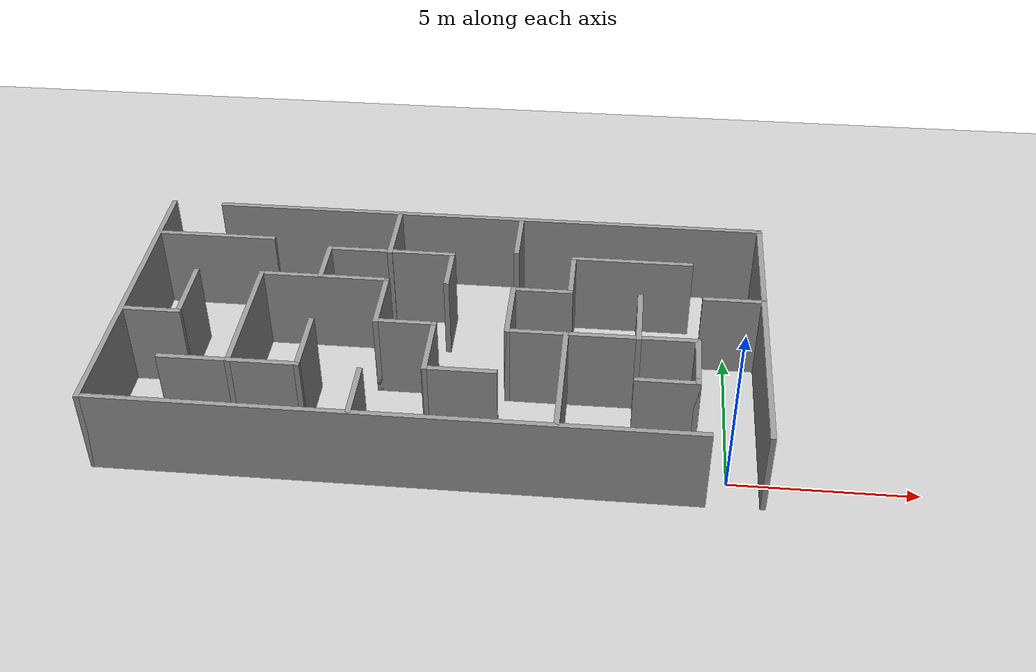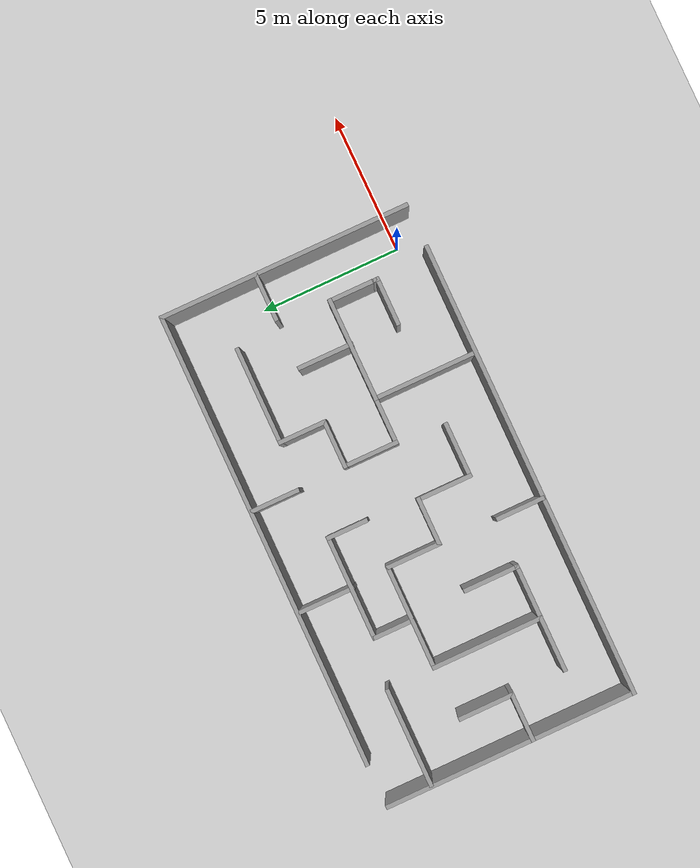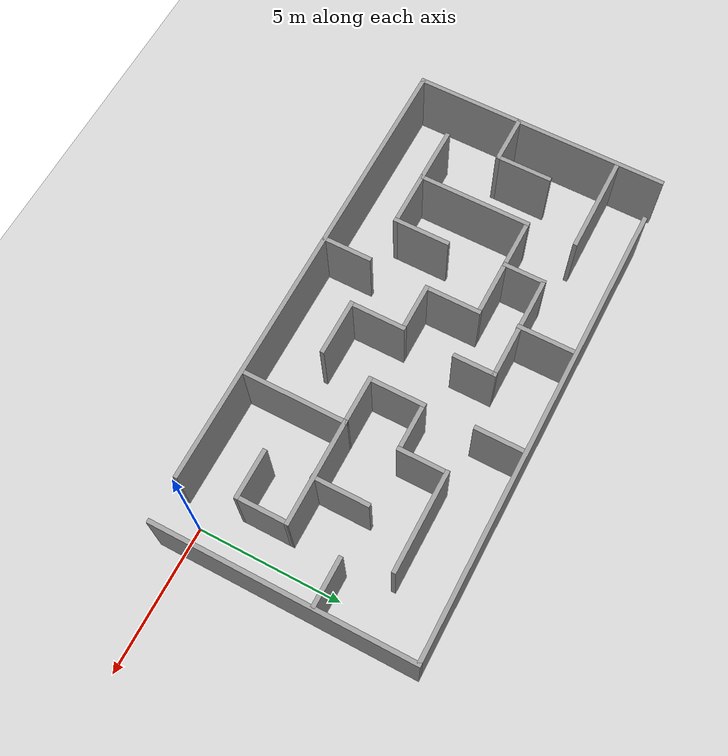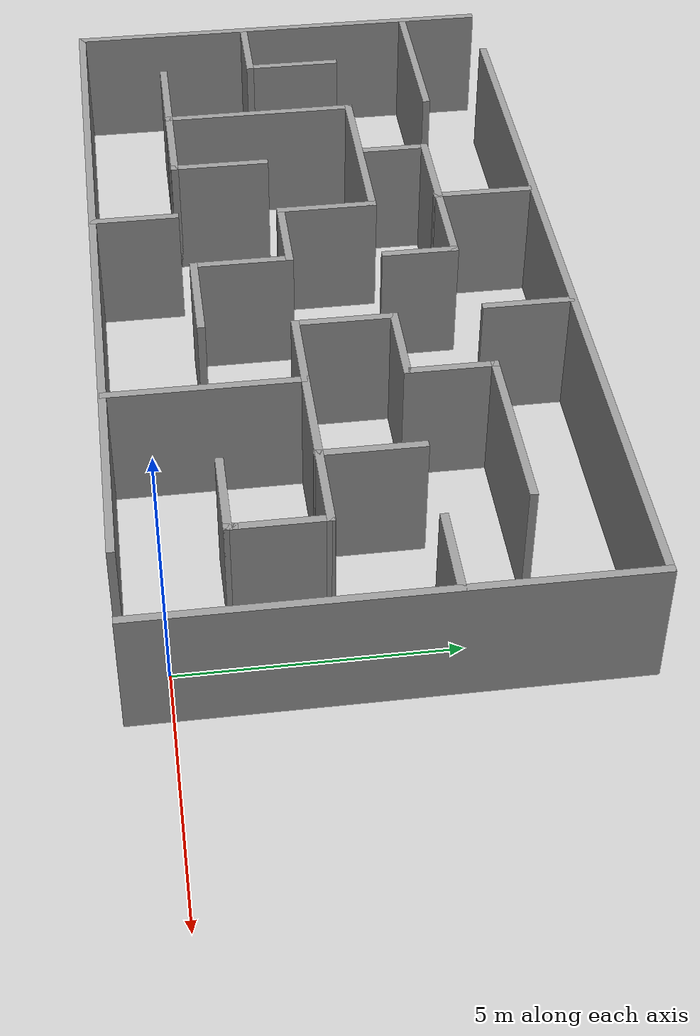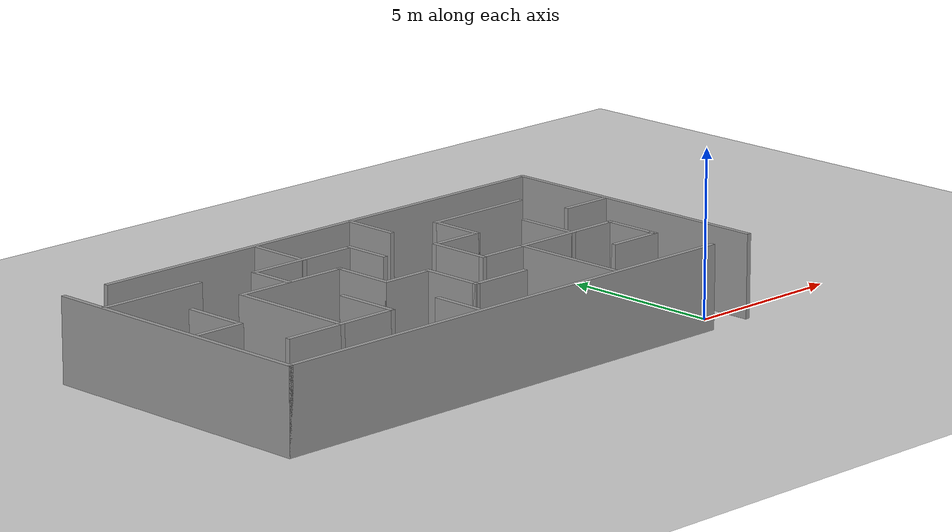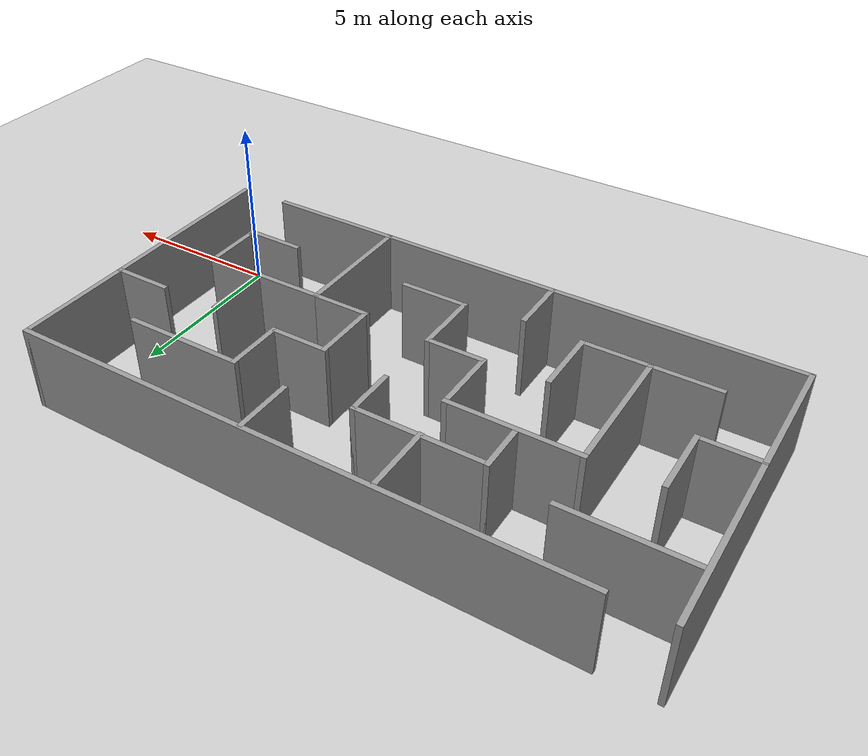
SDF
<sdf version="1.6">
 <world name="default">
  <light name="sun" type="directional">
   <pose>0 0 10 0 -0 0</pose>
   <diffuse>0.8 0.8 0.8 1</diffuse>
   <specular>0.2 0.2 0.2 1</specular>
   <attenuation>
    <range>1000</range>
    <constant>0.9</constant>
    <linear>0.01</linear>
    <quadratic>0.001</quadratic>
   </attenuation>
   <direction>-0.5 0.1 -0.9</direction>
  </light>
  <model name="ground_plane">
   <static>1</static>
   <link name="link">
    <collision name="collision">
     <geometry><plane><normal>0 0 1</normal><size>100 100</size></plane></geometry>
     <surface>
      <contact><collide_bitmask>65535</collide_bitmask></contact>
      <friction><ode><mu>100</mu><mu2>50</mu2></ode></friction>
     </surface>
    </collision>
    <visual name="visual">
     <cast_shadows>0</cast_shadows>
     <geometry><plane><normal>0 0 1</normal><size>100 100</size></plane></geometry>
     <material>
      <script><uri>file://media/materials/scripts/gazebo.material</uri><name>Gazebo/Grey</name></script>
     </material>
    </visual>
   </link>
  </model>
  <gravity>0 0 -9.8</gravity>
  <magnetic_field>6e-06 2.3e-05 -4.2e-05</magnetic_field>
  <atmosphere type="adiabatic"/>
  <physics name="default_physics" default="0" type="ode">
   <max_step_size>0.001</max_step_size>
   <real_time_factor>1</real_time_factor>
   <real_time_update_rate>1000</real_time_update_rate>
  </physics>
  <scene><ambient>0.4 0.4 0.4 1</ambient><background>0.7 0.7 0.7 1</background><shadows>1</shadows></scene>
  <spherical_coordinates>
   <surface_model>EARTH_WGS84</surface_model>
   <latitude_deg>0</latitude_deg>
   <longitude_deg>0</longitude_deg>
   <elevation>0</elevation>
   <heading_deg>0</heading_deg>
  </spherical_coordinates>
  <model name="maze">
   <pose>-7.91635 3.66306 0 0 -0 3.14</pose>
   <link name="Wall_0">
    <collision name="Wall_0_Collision">
     <geometry><box><size>16.25 0.15 2.5</size></box></geometry>
     <pose>0 0 1.25 0 -0 0</pose>
    </collision>
    <visual name="Wall_0_Visual">
     <pose>0 0 1.25 0 -0 0</pose>
     <geometry><box><size>16.25 0.15 2.5</size></box></geometry>
     <material>
      <script><uri>file://media/materials/scripts/gazebo.material</uri><name>Gazebo/Grey</name></script>
      <ambient>1 1 1 1</ambient>
     </material>
     <meta><layer>0</layer></meta>
    </visual>
    <pose>0.774875 4.44813 0 0 -0 0</pose>
   </link>
   <link name="Wall_1">
    <collision name="Wall_1_Collision">
     <geometry><box><size>9 0.15 2.5</size></box></geometry>
     <pose>0 0 1.25 0 -0 0</pose>
    </collision>
    <visual name="Wall_1_Visual">
     <pose>0 0 1.25 0 -0 0</pose>
     <geometry><box><size>9 0.15 2.5</size></box></geometry>
     <material>
      <script><uri>file://media/materials/scripts/gazebo.material</uri><name>Gazebo/Grey</name></script>
      <ambient>1 1 1 1</ambient>
     </material>
     <meta><layer>0</layer></meta>
    </visual>
    <pose>8.82488 0.02313 0 0 -0 -1.5708</pose>
   </link>
   <link name="Wall_13">
    <collision name="Wall_13_Collision">
     <geometry><box><size>0.25 0.15 2.5</size></box></geometry>
     <pose>0 0 1.25 0 -0 0</pose>
    </collision>
    <visual name="Wall_13_Visual">
     <pose>0 0 1.25 0 -0 0</pose>
     <geometry><box><size>0.25 0.15 2.5</size></box></geometry>
     <material>
      <script><uri>file://media/materials/scripts/gazebo.material</uri><name>Gazebo/Grey</name></script>
      <ambient>1 1 1 1</ambient>
     </material>
     <meta><layer>0</layer></meta>
    </visual>
    <pose>-7.00235 2.475 0 0 -0 1.5708</pose>
   </link>
   <link name="Wall_14">
    <collision name="Wall_14_Collision">
     <geometry><box><size>1.75 0.15 2.5</size></box></geometry>
     <pose>0 0 1.25 0 -0 0</pose>
    </collision>
    <visual name="Wall_14_Visual">
     <pose>0 0 1.25 0 -0 0</pose>
     <geometry><box><size>1.75 0.15 2.5</size></box></geometry>
     <material>
      <script><uri>file://media/materials/scripts/gazebo.material</uri><name>Gazebo/Grey</name></script>
      <ambient>1 1 1 1</ambient>
     </material>
     <meta><layer>0</layer></meta>
    </visual>
    <pose>-6.20235 2.525 0 0 -0 0</pose>
   </link>
   <link name="Wall_17">
    <collision name="Wall_17_Collision">
     <geometry><box><size>1.75 0.15 2.5</size></box></geometry>
     <pose>0 0 1.25 0 -0 0</pose>
    </collision>
    <visual name="Wall_17_Visual">
     <pose>0 0 1.25 0 -0 0</pose>
     <geometry><box><size>1.75 0.15 2.5</size></box></geometry>
     <material>
      <script><uri>file://media/materials/scripts/gazebo.material</uri><name>Gazebo/Grey</name></script>
      <ambient>1 1 1 1</ambient>
     </material>
     <meta><layer>0</layer></meta>
    </visual>
    <pose>-2.65857 0.825 0 0 -0 0</pose>
   </link>
   <link name="Wall_18">
    <collision name="Wall_18_Collision">
     <geometry><box><size>2 0.15 2.5</size></box></geometry>
     <pose>0 0 1.25 0 -0 0</pose>
    </collision>
    <visual name="Wall_18_Visual">
     <pose>0 0 1.25 0 -0 0</pose>
     <geometry><box><size>2 0.15 2.5</size></box></geometry>
     <material>
      <script><uri>file://media/materials/scripts/gazebo.material</uri><name>Gazebo/Grey</name></script>
      <ambient>1 1 1 1</ambient>
     </material>
     <meta><layer>0</layer></meta>
    </visual>
    <pose>-1.85858 -0.1 0 0 -0 -1.5708</pose>
   </link>
   <link name="Wall_19">
    <collision name="Wall_19_Collision">
     <geometry><box><size>1.75 0.15 2.5</size></box></geometry>
     <pose>0 0 1.25 0 -0 0</pose>
    </collision>
    <visual name="Wall_19_Visual">
     <pose>0 0 1.25 0 -0 0</pose>
     <geometry><box><size>1.75 0.15 2.5</size></box></geometry>
     <material>
      <script><uri>file://media/materials/scripts/gazebo.material</uri><name>Gazebo/Grey</name></script>
      <ambient>1 1 1 1</ambient>
     </material>
     <meta><layer>0</layer></meta>
    </visual>
    <pose>-2.65857 -1.025 0 0 -0 3.14159</pose>
   </link>
   <link name="Wall_20">
    <collision name="Wall_20_Collision">
     <geometry><box><size>1.75 0.15 2.5</size></box></geometry>
     <pose>0 0 1.25 0 -0 0</pose>
    </collision>
    <visual name="Wall_20_Visual">
     <pose>0 0 1.25 0 -0 0</pose>
     <geometry><box><size>1.75 0.15 2.5</size></box></geometry>
     <material>
      <script><uri>file://media/materials/scripts/gazebo.material</uri><name>Gazebo/Grey</name></script>
      <ambient>1 1 1 1</ambient>
     </material>
     <meta><layer>0</layer></meta>
    </visual>
    <pose>-3.45858 -1.825 0 0 -0 -1.5708</pose>
   </link>
   <link name="Wall_21">
    <collision name="Wall_21_Collision">
     <geometry><box><size>3.5 0.15 2.5</size></box></geometry>
     <pose>0 0 1.25 0 -0 0</pose>
    </collision>
    <visual name="Wall_21_Visual">
     <pose>0 0 1.25 0 -0 0</pose>
     <geometry><box><size>3.5 0.15 2.5</size></box></geometry>
     <material>
      <script><uri>file://media/materials/scripts/gazebo.material</uri><name>Gazebo/Grey</name></script>
      <ambient>1 1 1 1</ambient>
     </material>
     <meta><layer>0</layer></meta>
    </visual>
    <pose>-5.13357 -2.625 0 0 -0 3.14159</pose>
   </link>
   <link name="Wall_23">
    <collision name="Wall_23_Collision">
     <geometry><box><size>2 0.15 2.5</size></box></geometry>
     <pose>0 0 1.25 0 -0 0</pose>
    </collision>
    <visual name="Wall_23_Visual">
     <pose>0 0 1.25 0 -0 0</pose>
     <geometry><box><size>2 0.15 2.5</size></box></geometry>
     <material>
      <script><uri>file://media/materials/scripts/gazebo.material</uri><name>Gazebo/Grey</name></script>
      <ambient>1 1 1 1</ambient>
     </material>
     <meta><layer>0</layer></meta>
    </visual>
    <pose>-5.41688 -0.089204 0 0 -0 -1.5708</pose>
   </link>
   <link name="Wall_25">
    <collision name="Wall_25_Collision">
     <geometry><box><size>1.75 0.15 2.5</size></box></geometry>
     <pose>0 0 1.25 0 -0 0</pose>
    </collision>
    <visual name="Wall_25_Visual">
     <pose>0 0 1.25 0 -0 0</pose>
     <geometry><box><size>1.75 0.15 2.5</size></box></geometry>
     <material>
      <script><uri>file://media/materials/scripts/gazebo.material</uri><name>Gazebo/Grey</name></script>
      <ambient>1 1 1 1</ambient>
     </material>
     <meta><layer>0</layer></meta>
    </visual>
    <pose>-8.00995 -1.05313 0 0 -0 0</pose>
   </link>
   <link name="Wall_27">
    <collision name="Wall_27_Collision">
     <geometry><box><size>1.75 0.15 2.5</size></box></geometry>
     <pose>0 0 1.25 0 -0 0</pose>
    </collision>
    <visual name="Wall_27_Visual">
     <pose>0 0 1.25 0 -0 0</pose>
     <geometry><box><size>1.75 0.15 2.5</size></box></geometry>
     <material>
      <script><uri>file://media/materials/scripts/gazebo.material</uri><name>Gazebo/Grey</name></script>
      <ambient>1 1 1 1</ambient>
     </material>
     <meta><layer>0</layer></meta>
    </visual>
    <pose>-1.78801 -3.58208 0 0 -0 1.5708</pose>
   </link>
   <link name="Wall_29">
    <collision name="Wall_29_Collision">
     <geometry><box><size>1.75 0.15 2.5</size></box></geometry>
     <pose>0 0 1.25 0 -0 0</pose>
    </collision>
    <visual name="Wall_29_Visual">
     <pose>0 0 1.25 0 -0 0</pose>
     <geometry><box><size>1.75 0.15 2.5</size></box></geometry>
     <material>
      <script><uri>file://media/materials/scripts/gazebo.material</uri><name>Gazebo/Grey</name></script>
      <ambient>1 1 1 1</ambient>
     </material>
     <meta><layer>0</layer></meta>
    </visual>
    <pose>1.81187 3.61722 0 0 -0 -1.5708</pose>
   </link>
   <link name="Wall_3">
    <collision name="Wall_3_Collision">
     <geometry><box><size>9 0.15 2.5</size></box></geometry>
     <pose>0 0 1.25 0 -0 0</pose>
    </collision>
    <visual name="Wall_3_Visual">
     <pose>0 0 1.25 0 -0 0</pose>
     <geometry><box><size>9 0.15 2.5</size></box></geometry>
     <material>
      <script><uri>file://media/materials/scripts/gazebo.material</uri><name>Gazebo/Grey</name></script>
      <ambient>1 1 1 1</ambient>
     </material>
     <meta><layer>0</layer></meta>
    </visual>
    <pose>-8.82488 -0.023131 0 0 -0 -1.5708</pose>
   </link>
   <link name="Wall_32">
    <collision name="Wall_32_Collision">
     <geometry><box><size>2 0.15 2.5</size></box></geometry>
     <pose>0 0 1.25 0 -0 0</pose>
    </collision>
    <visual name="Wall_32_Visual">
     <pose>0 0 1.25 0 -0 0</pose>
     <geometry><box><size>2 0.15 2.5</size></box></geometry>
     <material>
      <script><uri>file://media/materials/scripts/gazebo.material</uri><name>Gazebo/Grey</name></script>
      <ambient>1 1 1 1</ambient>
     </material>
     <meta><layer>0</layer></meta>
    </visual>
    <pose>-0.778628 2.56327 0 0 -0 0</pose>
   </link>
   <link name="Wall_33">
    <collision name="Wall_33_Collision">
     <geometry><box><size>2 0.15 2.5</size></box></geometry>
     <pose>0 0 1.25 0 -0 0</pose>
    </collision>
    <visual name="Wall_33_Visual">
     <pose>0 0 1.25 0 -0 0</pose>
     <geometry><box><size>2 0.15 2.5</size></box></geometry>
     <material>
      <script><uri>file://media/materials/scripts/gazebo.material</uri><name>Gazebo/Grey</name></script>
      <ambient>1 1 1 1</ambient>
     </material>
     <meta><layer>0</layer></meta>
    </visual>
    <pose>0.146372 1.63827 0 0 -0 -1.5708</pose>
   </link>
   <link name="Wall_34">
    <collision name="Wall_34_Collision">
     <geometry><box><size>1.75 0.15 2.5</size></box></geometry>
     <pose>0 0 1.25 0 -0 0</pose>
    </collision>
    <visual name="Wall_34_Visual">
     <pose>0 0 1.25 0 -0 0</pose>
     <geometry><box><size>1.75 0.15 2.5</size></box></geometry>
     <material>
      <script><uri>file://media/materials/scripts/gazebo.material</uri><name>Gazebo/Grey</name></script>
      <ambient>1 1 1 1</ambient>
     </material>
     <meta><layer>0</layer></meta>
    </visual>
    <pose>0.946372 0.713275 0 0 -0 0</pose>
   </link>
   <link name="Wall_35">
    <collision name="Wall_35_Collision">
     <geometry><box><size>2 0.15 2.5</size></box></geometry>
     <pose>0 0 1.25 0 -0 0</pose>
    </collision>
    <visual name="Wall_35_Visual">
     <pose>0 0 1.25 0 -0 0</pose>
     <geometry><box><size>2 0.15 2.5</size></box></geometry>
     <material>
      <script><uri>file://media/materials/scripts/gazebo.material</uri><name>Gazebo/Grey</name></script>
      <ambient>1 1 1 1</ambient>
     </material>
     <meta><layer>0</layer></meta>
    </visual>
    <pose>1.74637 -0.211725 0 0 -0 -1.5708</pose>
   </link>
   <link name="Wall_36">
    <collision name="Wall_36_Collision">
     <geometry><box><size>3.75 0.15 2.5</size></box></geometry>
     <pose>0 0 1.25 0 -0 0</pose>
    </collision>
    <visual name="Wall_36_Visual">
     <pose>0 0 1.25 0 -0 0</pose>
     <geometry><box><size>3.75 0.15 2.5</size></box></geometry>
     <material>
      <script><uri>file://media/materials/scripts/gazebo.material</uri><name>Gazebo/Grey</name></script>
      <ambient>1 1 1 1</ambient>
     </material>
     <meta><layer>0</layer></meta>
    </visual>
    <pose>3.54637 -1.13672 0 0 -0 0</pose>
   </link>
   <link name="Wall_37">
    <collision name="Wall_37_Collision">
     <geometry><box><size>4 0.15 2.5</size></box></geometry>
     <pose>0 0 1.25 0 -0 0</pose>
    </collision>
    <visual name="Wall_37_Visual">
     <pose>0 0 1.25 0 -0 0</pose>
     <geometry><box><size>4 0.15 2.5</size></box></geometry>
     <material>
      <script><uri>file://media/materials/scripts/gazebo.material</uri><name>Gazebo/Grey</name></script>
      <ambient>1 1 1 1</ambient>
     </material>
     <meta><layer>0</layer></meta>
    </visual>
    <pose>5.34637 0.788275 0 0 -0 1.5708</pose>
   </link>
   <link name="Wall_38">
    <collision name="Wall_38_Collision">
     <geometry><box><size>2 0.15 2.5</size></box></geometry>
     <pose>0 0 1.25 0 -0 0</pose>
    </collision>
    <visual name="Wall_38_Visual">
     <pose>0 0 1.25 0 -0 0</pose>
     <geometry><box><size>2 0.15 2.5</size></box></geometry>
     <material>
      <script><uri>file://media/materials/scripts/gazebo.material</uri><name>Gazebo/Grey</name></script>
      <ambient>1 1 1 1</ambient>
     </material>
     <meta><layer>0</layer></meta>
    </visual>
    <pose>4.42137 2.71327 0 0 -0 3.14159</pose>
   </link>
   <link name="Wall_39">
    <collision name="Wall_39_Collision">
     <geometry><box><size>2 0.15 2.5</size></box></geometry>
     <pose>0 0 1.25 0 -0 0</pose>
    </collision>
    <visual name="Wall_39_Visual">
     <pose>0 0 1.25 0 -0 0</pose>
     <geometry><box><size>2 0.15 2.5</size></box></geometry>
     <material>
      <script><uri>file://media/materials/scripts/gazebo.material</uri><name>Gazebo/Grey</name></script>
      <ambient>1 1 1 1</ambient>
     </material>
     <meta><layer>0</layer></meta>
    </visual>
    <pose>3.49637 1.78828 0 0 -0 -1.5708</pose>
   </link>
   <link name="Wall_4">
    <collision name="Wall_4_Collision">
     <geometry><box><size>16.25 0.15 2.5</size></box></geometry>
     <pose>0 0 1.25 0 -0 0</pose>
    </collision>
    <visual name="Wall_4_Visual">
     <pose>0 0 1.25 0 -0 0</pose>
     <geometry><box><size>16.25 0.15 2.5</size></box></geometry>
     <material>
      <script><uri>file://media/materials/scripts/gazebo.material</uri><name>Gazebo/Grey</name></script>
      <ambient>1 1 1 1</ambient>
     </material>
     <meta><layer>0</layer></meta>
    </visual>
    <pose>-0.774876 -4.44813 0 0 -0 0</pose>
   </link>
   <link name="Wall_41">
    <collision name="Wall_41_Collision">
     <geometry><box><size>2 0.15 2.5</size></box></geometry>
     <pose>0 0 1.25 0 -0 0</pose>
    </collision>
    <visual name="Wall_41_Visual">
     <pose>0 0 1.25 0 -0 0</pose>
     <geometry><box><size>2 0.15 2.5</size></box></geometry>
     <material>
      <script><uri>file://media/materials/scripts/gazebo.material</uri><name>Gazebo/Grey</name></script>
      <ambient>1 1 1 1</ambient>
     </material>
     <meta><layer>0</layer></meta>
    </visual>
    <pose>6.27137 2.71327 0 0 -0 0</pose>
   </link>
   <link name="Wall_43">
    <collision name="Wall_43_Collision">
     <geometry><box><size>1.5 0.15 2.5</size></box></geometry>
     <pose>0 0 1.25 0 -0 0</pose>
    </collision>
    <visual name="Wall_43_Visual">
     <pose>0 0 1.25 0 -0 0</pose>
     <geometry><box><size>1.5 0.15 2.5</size></box></geometry>
     <material>
      <script><uri>file://media/materials/scripts/gazebo.material</uri><name>Gazebo/Grey</name></script>
      <ambient>1 1 1 1</ambient>
     </material>
     <meta><layer>0</layer></meta>
    </visual>
    <pose>0.050558 -1.82827 0 0 -0 -1.5708</pose>
   </link>
   <link name="Wall_44">
    <collision name="Wall_44_Collision">
     <geometry><box><size>3.75 0.15 2.5</size></box></geometry>
     <pose>0 0 1.25 0 -0 0</pose>
    </collision>
    <visual name="Wall_44_Visual">
     <pose>0 0 1.25 0 -0 0</pose>
     <geometry><box><size>3.75 0.15 2.5</size></box></geometry>
     <material>
      <script><uri>file://media/materials/scripts/gazebo.material</uri><name>Gazebo/Grey</name></script>
      <ambient>1 1 1 1</ambient>
     </material>
     <meta><layer>0</layer></meta>
    </visual>
    <pose>1.85056 -2.50327 0 0 -0 0</pose>
   </link>
   <link name="Wall_45">
    <collision name="Wall_45_Collision">
     <geometry><box><size>1.5 0.15 2.5</size></box></geometry>
     <pose>0 0 1.25 0 -0 0</pose>
    </collision>
    <visual name="Wall_45_Visual">
     <pose>0 0 1.25 0 -0 0</pose>
     <geometry><box><size>1.5 0.15 2.5</size></box></geometry>
     <material>
      <script><uri>file://media/materials/scripts/gazebo.material</uri><name>Gazebo/Grey</name></script>
      <ambient>1 1 1 1</ambient>
     </material>
     <meta><layer>0</layer></meta>
    </visual>
    <pose>3.65056 -1.82827 0 0 -0 1.5708</pose>
   </link>
   <link name="Wall_47">
    <collision name="Wall_47_Collision">
     <geometry><box><size>2 0.15 2.5</size></box></geometry>
     <pose>0 0 1.25 0 -0 0</pose>
    </collision>
    <visual name="Wall_47_Visual">
     <pose>0 0 1.25 0 -0 0</pose>
     <geometry><box><size>2 0.15 2.5</size></box></geometry>
     <material>
      <script><uri>file://media/materials/scripts/gazebo.material</uri><name>Gazebo/Grey</name></script>
      <ambient>1 1 1 1</ambient>
     </material>
     <meta><layer>0</layer></meta>
    </visual>
    <pose>1.87391 -3.40531 0 0 -0 1.5708</pose>
   </link>
   <link name="Wall_49">
    <collision name="Wall_49_Collision">
     <geometry><box><size>3.5 0.15 2.5</size></box></geometry>
     <pose>0 0 1.25 0 -0 0</pose>
    </collision>
    <visual name="Wall_49_Visual">
     <pose>0 0 1.25 0 -0 0</pose>
     <geometry><box><size>3.5 0.15 2.5</size></box></geometry>
     <material>
      <script><uri>file://media/materials/scripts/gazebo.material</uri><name>Gazebo/Grey</name></script>
      <ambient>1 1 1 1</ambient>
     </material>
     <meta><layer>0</layer></meta>
    </visual>
    <pose>7.08935 -2.83385 0 0 -0 3.14159</pose>
   </link>
   <link name="Wall_51">
    <collision name="Wall_51_Collision">
     <geometry><box><size>1.75 0.15 2.5</size></box></geometry>
     <pose>0 0 1.25 0 -0 0</pose>
    </collision>
    <visual name="Wall_51_Visual">
     <pose>0 0 1.25 0 -0 0</pose>
     <geometry><box><size>1.75 0.15 2.5</size></box></geometry>
     <material>
      <script><uri>file://media/materials/scripts/gazebo.material</uri><name>Gazebo/Grey</name></script>
      <ambient>1 1 1 1</ambient>
     </material>
     <meta><layer>0</layer></meta>
    </visual>
    <pose>8.02185 0.804985 0 0 -0 3.14159</pose>
   </link>
   <link name="Wall_52">
    <collision name="Wall_52_Collision">
     <geometry><box><size>2 0.15 2.5</size></box></geometry>
     <pose>0 0 1.25 0 -0 0</pose>
    </collision>
    <visual name="Wall_52_Visual">
     <pose>0 0 1.25 0 -0 0</pose>
     <geometry><box><size>2 0.15 2.5</size></box></geometry>
     <material>
      <script><uri>file://media/materials/scripts/gazebo.material</uri><name>Gazebo/Grey</name></script>
      <ambient>1 1 1 1</ambient>
     </material>
     <meta><layer>0</layer></meta>
    </visual>
    <pose>7.22185 -0.120015 0 0 -0 -1.5708</pose>
   </link>
   <link name="Wall_6">
    <collision name="Wall_6_Collision">
     <geometry><box><size>3.75 0.15 2.5</size></box></geometry>
     <pose>0 0 1.25 0 -0 0</pose>
    </collision>
    <visual name="Wall_6_Visual">
     <pose>0 0 1.25 0 -0 0</pose>
     <geometry><box><size>3.75 0.15 2.5</size></box></geometry>
     <material>
      <script><uri>file://media/materials/scripts/gazebo.material</uri><name>Gazebo/Grey</name></script>
      <ambient>1 1 1 1</ambient>
     </material>
     <meta><layer>0</layer></meta>
    </visual>
    <pose>-3.45858 2.625 0 0 -0 -1.5708</pose>
   </link>
   <link name="Wall_7">
    <collision name="Wall_7_Collision">
     <geometry><box><size>3.69388 0.15 2.5</size></box></geometry>
     <pose>0 0 1.25 0 -0 0</pose>
    </collision>
    <visual name="Wall_7_Visual">
     <pose>0 0 1.25 0 -0 0</pose>
     <geometry><box><size>3.69388 0.15 2.5</size></box></geometry>
     <material>
      <script><uri>file://media/materials/scripts/gazebo.material</uri><name>Gazebo/Grey</name></script>
      <ambient>1 1 1 1</ambient>
     </material>
     <meta><layer>0</layer></meta>
    </visual>
    <pose>-5.23046 0.818387 0 0 -0 -3.13786</pose>
   </link>
   <link name="Wall_8">
    <collision name="Wall_8_Collision">
     <geometry><box><size>1.75 0.15 2.5</size></box></geometry>
     <pose>0 0 1.25 0 -0 0</pose>
    </collision>
    <visual name="Wall_8_Visual">
     <pose>0 0 1.25 0 -0 0</pose>
     <geometry><box><size>1.75 0.15 2.5</size></box></geometry>
     <material>
      <script><uri>file://media/materials/scripts/gazebo.material</uri><name>Gazebo/Grey</name></script>
      <ambient>1 1 1 1</ambient>
     </material>
     <meta><layer>0</layer></meta>
    </visual>
    <pose>-7.00235 1.625 0 0 -0 1.5708</pose>
   </link>
   <static>1</static>
  </model>
 </world>
</sdf>
